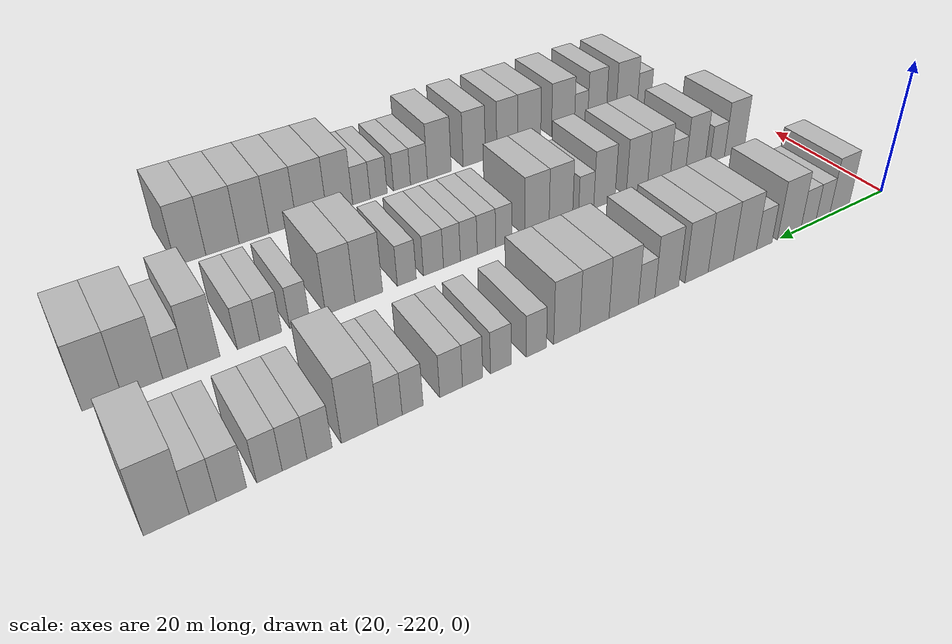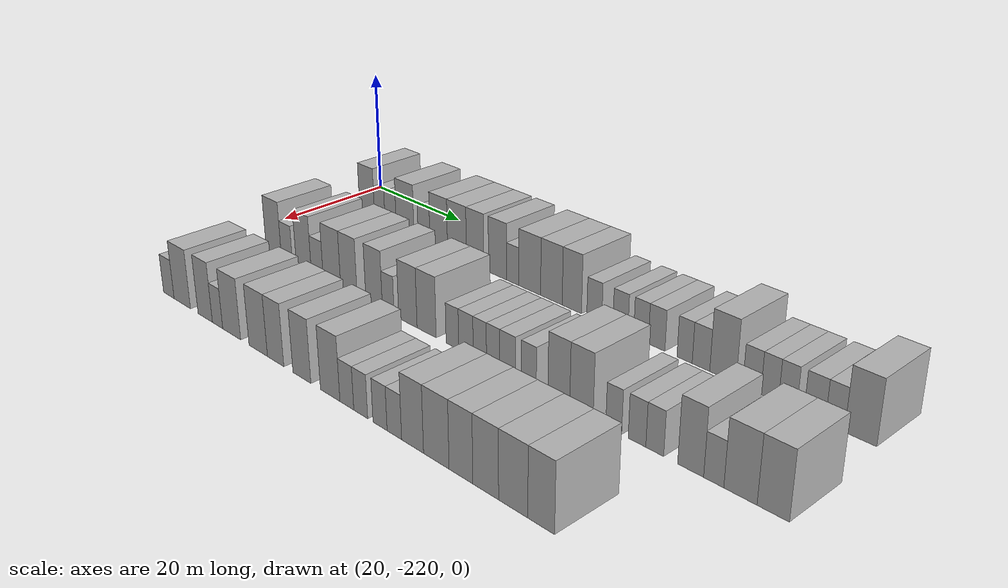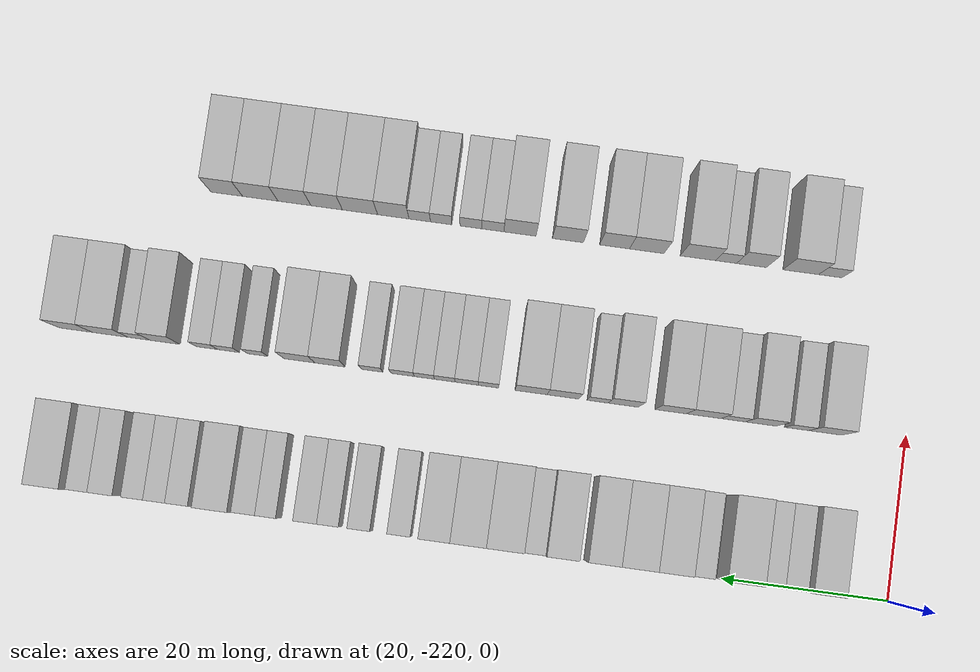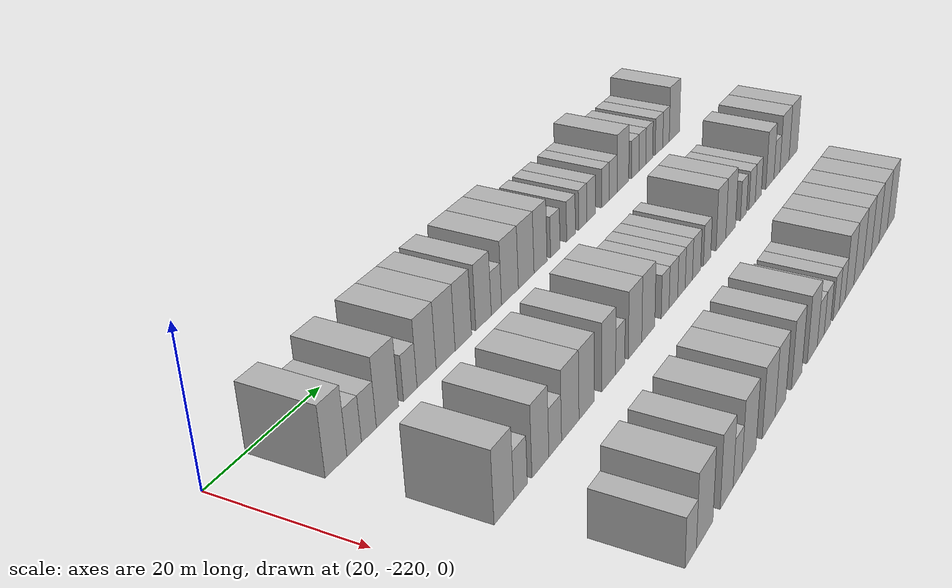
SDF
<sdf version="1.6">
 <world name="default">
  <model name="building_32">
   <static>1</static>
   <pose>25.0000 -211.2157 0 0.000000 0.000000 0.000000</pose>
   <link name="link">
    <pose>0 0 4.50 0 0 0</pose>
    <collision name="collision"><geometry><box><size>10.0000 3.8600 9.0000</size></box></geometry></collision>
    <visual name="visual">
     <cast_shadows>0</cast_shadows>
     <geometry><box><size>10.0000 3.8600 9.0000</size></box></geometry>
     <material>
      <script>
       <uri>model://HANNAS_wall/materials/scripts</uri>
       <uri>model://HANNAS_wall/materials/textures</uri>
       <name>vrc/HANNAS_wall</name>
      </script>
     </material>
    </visual>
   </link>
  </model>
  <model name="building_33">
   <static>1</static>
   <pose>25.0000 -207.9436 0 0.000000 0.000000 0.000000</pose>
   <link name="link">
    <pose>0 0 3.00 0 0 0</pose>
    <collision name="collision"><geometry><box><size>10.0000 2.6841 6.0000</size></box></geometry></collision>
    <visual name="visual">
     <cast_shadows>0</cast_shadows>
     <geometry><box><size>10.0000 2.6841 6.0000</size></box></geometry>
     <material>
      <script>
       <uri>model://HANNAS_wall/materials/scripts</uri>
       <uri>model://HANNAS_wall/materials/textures</uri>
       <name>vrc/HANNAS_wall</name>
      </script>
     </material>
    </visual>
   </link>
  </model>
  <model name="building_34">
   <static>1</static>
   <pose>25.0000 -205.1876 0 0.000000 0.000000 0.000000</pose>
   <link name="link">
    <pose>0 0 3.00 0 0 0</pose>
    <collision name="collision"><geometry><box><size>10.0000 2.8280 6.0000</size></box></geometry></collision>
    <visual name="visual">
     <cast_shadows>0</cast_shadows>
     <geometry><box><size>10.0000 2.8280 6.0000</size></box></geometry>
     <material>
      <script>
       <uri>model://HANNAS_wall/materials/scripts</uri>
       <uri>model://HANNAS_wall/materials/textures</uri>
       <name>vrc/HANNAS_wall</name>
      </script>
     </material>
    </visual>
   </link>
  </model>
  <model name="building_35">
   <static>1</static>
   <pose>25.0000 -201.5887 0 0.000000 0.000000 0.000000</pose>
   <link name="link">
    <pose>0 0 4.50 0 0 0</pose>
    <collision name="collision"><geometry><box><size>10.0000 4.3697 9.0000</size></box></geometry></collision>
    <visual name="visual">
     <cast_shadows>0</cast_shadows>
     <geometry><box><size>10.0000 4.3697 9.0000</size></box></geometry>
     <material>
      <script>
       <uri>model://HANNAS_wall/materials/scripts</uri>
       <uri>model://HANNAS_wall/materials/textures</uri>
       <name>vrc/HANNAS_wall</name>
      </script>
     </material>
    </visual>
   </link>
  </model>
  <model name="building_36">
   <static>1</static>
   <pose>25.0000 -196.9977 0 0.000000 0.000000 0.000000</pose>
   <link name="link">
    <pose>0 0 3.00 0 0 0</pose>
    <collision name="collision"><geometry><box><size>10.0000 2.8122 6.0000</size></box></geometry></collision>
    <visual name="visual">
     <cast_shadows>0</cast_shadows>
     <geometry><box><size>10.0000 2.8122 6.0000</size></box></geometry>
     <material>
      <script>
       <uri>model://HANNAS_wall/materials/scripts</uri>
       <uri>model://HANNAS_wall/materials/textures</uri>
       <name>vrc/HANNAS_wall</name>
      </script>
     </material>
    </visual>
   </link>
  </model>
  <model name="building_37">
   <static>1</static>
   <pose>25.0000 -193.5431 0 0.000000 0.000000 0.000000</pose>
   <link name="link">
    <pose>0 0 4.50 0 0 0</pose>
    <collision name="collision"><geometry><box><size>10.0000 4.0971 9.0000</size></box></geometry></collision>
    <visual name="visual">
     <cast_shadows>0</cast_shadows>
     <geometry><box><size>10.0000 4.0971 9.0000</size></box></geometry>
     <material>
      <script>
       <uri>model://HANNAS_wall/materials/scripts</uri>
       <uri>model://HANNAS_wall/materials/textures</uri>
       <name>vrc/HANNAS_wall</name>
      </script>
     </material>
    </visual>
   </link>
  </model>
  <model name="building_38">
   <static>1</static>
   <pose>25.0000 -189.3610 0 0.000000 0.000000 0.000000</pose>
   <link name="link">
    <pose>0 0 4.50 0 0 0</pose>
    <collision name="collision"><geometry><box><size>10.0000 4.2671 9.0000</size></box></geometry></collision>
    <visual name="visual">
     <cast_shadows>0</cast_shadows>
     <geometry><box><size>10.0000 4.2671 9.0000</size></box></geometry>
     <material>
      <script>
       <uri>model://HANNAS_wall/materials/scripts</uri>
       <uri>model://HANNAS_wall/materials/textures</uri>
       <name>vrc/HANNAS_wall</name>
      </script>
     </material>
    </visual>
   </link>
  </model>
  <model name="building_39">
   <static>1</static>
   <pose>25.0000 -185.3052 0 0.000000 0.000000 0.000000</pose>
   <link name="link">
    <pose>0 0 4.50 0 0 0</pose>
    <collision name="collision"><geometry><box><size>10.0000 3.8444 9.0000</size></box></geometry></collision>
    <visual name="visual">
     <cast_shadows>0</cast_shadows>
     <geometry><box><size>10.0000 3.8444 9.0000</size></box></geometry>
     <material>
      <script>
       <uri>model://HANNAS_wall/materials/scripts</uri>
       <uri>model://HANNAS_wall/materials/textures</uri>
       <name>vrc/HANNAS_wall</name>
      </script>
     </material>
    </visual>
   </link>
  </model>
  <model name="building_40">
   <static>1</static>
   <pose>25.0000 -180.4856 0 0.000000 0.000000 0.000000</pose>
   <link name="link">
    <pose>0 0 4.50 0 0 0</pose>
    <collision name="collision"><geometry><box><size>10.0000 3.7950 9.0000</size></box></geometry></collision>
    <visual name="visual">
     <cast_shadows>0</cast_shadows>
     <geometry><box><size>10.0000 3.7950 9.0000</size></box></geometry>
     <material>
      <script>
       <uri>model://HANNAS_wall/materials/scripts</uri>
       <uri>model://HANNAS_wall/materials/textures</uri>
       <name>vrc/HANNAS_wall</name>
      </script>
     </material>
    </visual>
   </link>
  </model>
  <model name="building_41">
   <static>1</static>
   <pose>25.0000 -177.2957 0 0.000000 0.000000 0.000000</pose>
   <link name="link">
    <pose>0 0 3.00 0 0 0</pose>
    <collision name="collision"><geometry><box><size>10.0000 2.5848 6.0000</size></box></geometry></collision>
    <visual name="visual">
     <cast_shadows>0</cast_shadows>
     <geometry><box><size>10.0000 2.5848 6.0000</size></box></geometry>
     <material>
      <script>
       <uri>model://HANNAS_wall/materials/scripts</uri>
       <uri>model://HANNAS_wall/materials/textures</uri>
       <name>vrc/HANNAS_wall</name>
      </script>
     </material>
    </visual>
   </link>
  </model>
  <model name="building_42">
   <static>1</static>
   <pose>25.0000 -173.7970 0 0.000000 0.000000 0.000000</pose>
   <link name="link">
    <pose>0 0 4.50 0 0 0</pose>
    <collision name="collision"><geometry><box><size>10.0000 4.4127 9.0000</size></box></geometry></collision>
    <visual name="visual">
     <cast_shadows>0</cast_shadows>
     <geometry><box><size>10.0000 4.4127 9.0000</size></box></geometry>
     <material>
      <script>
       <uri>model://HANNAS_wall/materials/scripts</uri>
       <uri>model://HANNAS_wall/materials/textures</uri>
       <name>vrc/HANNAS_wall</name>
      </script>
     </material>
    </visual>
   </link>
  </model>
  <model name="building_43">
   <static>1</static>
   <pose>25.0000 -169.4699 0 0.000000 0.000000 0.000000</pose>
   <link name="link">
    <pose>0 0 4.50 0 0 0</pose>
    <collision name="collision"><geometry><box><size>10.0000 4.2415 9.0000</size></box></geometry></collision>
    <visual name="visual">
     <cast_shadows>0</cast_shadows>
     <geometry><box><size>10.0000 4.2415 9.0000</size></box></geometry>
     <material>
      <script>
       <uri>model://HANNAS_wall/materials/scripts</uri>
       <uri>model://HANNAS_wall/materials/textures</uri>
       <name>vrc/HANNAS_wall</name>
      </script>
     </material>
    </visual>
   </link>
  </model>
  <model name="building_44">
   <static>1</static>
   <pose>25.0000 -165.5092 0 0.000000 0.000000 0.000000</pose>
   <link name="link">
    <pose>0 0 4.50 0 0 0</pose>
    <collision name="collision"><geometry><box><size>10.0000 3.6798 9.0000</size></box></geometry></collision>
    <visual name="visual">
     <cast_shadows>0</cast_shadows>
     <geometry><box><size>10.0000 3.6798 9.0000</size></box></geometry>
     <material>
      <script>
       <uri>model://HANNAS_wall/materials/scripts</uri>
       <uri>model://HANNAS_wall/materials/textures</uri>
       <name>vrc/HANNAS_wall</name>
      </script>
     </material>
    </visual>
   </link>
  </model>
  <model name="building_45">
   <static>1</static>
   <pose>25.0000 -161.2880 0 0.000000 0.000000 0.000000</pose>
   <link name="link">
    <pose>0 0 3.00 0 0 0</pose>
    <collision name="collision"><geometry><box><size>10.0000 2.7625 6.0000</size></box></geometry></collision>
    <visual name="visual">
     <cast_shadows>0</cast_shadows>
     <geometry><box><size>10.0000 2.7625 6.0000</size></box></geometry>
     <material>
      <script>
       <uri>model://HANNAS_wall/materials/scripts</uri>
       <uri>model://HANNAS_wall/materials/textures</uri>
       <name>vrc/HANNAS_wall</name>
      </script>
     </material>
    </visual>
   </link>
  </model>
  <model name="building_46">
   <static>1</static>
   <pose>25.0000 -156.5681 0 0.000000 0.000000 0.000000</pose>
   <link name="link">
    <pose>0 0 3.00 0 0 0</pose>
    <collision name="collision"><geometry><box><size>10.0000 2.6774 6.0000</size></box></geometry></collision>
    <visual name="visual">
     <cast_shadows>0</cast_shadows>
     <geometry><box><size>10.0000 2.6774 6.0000</size></box></geometry>
     <material>
      <script>
       <uri>model://HANNAS_wall/materials/scripts</uri>
       <uri>model://HANNAS_wall/materials/textures</uri>
       <name>vrc/HANNAS_wall</name>
      </script>
     </material>
    </visual>
   </link>
  </model>
  <model name="building_47">
   <static>1</static>
   <pose>25.0000 -152.9494 0 0.000000 0.000000 0.000000</pose>
   <link name="link">
    <pose>0 0 3.00 0 0 0</pose>
    <collision name="collision"><geometry><box><size>10.0000 2.5599 6.0000</size></box></geometry></collision>
    <visual name="visual">
     <cast_shadows>0</cast_shadows>
     <geometry><box><size>10.0000 2.5599 6.0000</size></box></geometry>
     <material>
      <script>
       <uri>model://HANNAS_wall/materials/scripts</uri>
       <uri>model://HANNAS_wall/materials/textures</uri>
       <name>vrc/HANNAS_wall</name>
      </script>
     </material>
    </visual>
   </link>
  </model>
  <model name="building_48">
   <static>1</static>
   <pose>25.0000 -150.2662 0 0.000000 0.000000 0.000000</pose>
   <link name="link">
    <pose>0 0 3.00 0 0 0</pose>
    <collision name="collision"><geometry><box><size>10.0000 2.8065 6.0000</size></box></geometry></collision>
    <visual name="visual">
     <cast_shadows>0</cast_shadows>
     <geometry><box><size>10.0000 2.8065 6.0000</size></box></geometry>
     <material>
      <script>
       <uri>model://HANNAS_wall/materials/scripts</uri>
       <uri>model://HANNAS_wall/materials/textures</uri>
       <name>vrc/HANNAS_wall</name>
      </script>
     </material>
    </visual>
   </link>
  </model>
  <model name="building_49">
   <static>1</static>
   <pose>25.0000 -145.6243 0 0.000000 0.000000 0.000000</pose>
   <link name="link">
    <pose>0 0 3.00 0 0 0</pose>
    <collision name="collision"><geometry><box><size>10.0000 2.4772 6.0000</size></box></geometry></collision>
    <visual name="visual">
     <cast_shadows>0</cast_shadows>
     <geometry><box><size>10.0000 2.4772 6.0000</size></box></geometry>
     <material>
      <script>
       <uri>model://HANNAS_wall/materials/scripts</uri>
       <uri>model://HANNAS_wall/materials/textures</uri>
       <name>vrc/HANNAS_wall</name>
      </script>
     </material>
    </visual>
   </link>
  </model>
  <model name="building_50">
   <static>1</static>
   <pose>25.0000 -142.9852 0 0.000000 0.000000 0.000000</pose>
   <link name="link">
    <pose>0 0 3.00 0 0 0</pose>
    <collision name="collision"><geometry><box><size>10.0000 2.8010 6.0000</size></box></geometry></collision>
    <visual name="visual">
     <cast_shadows>0</cast_shadows>
     <geometry><box><size>10.0000 2.8010 6.0000</size></box></geometry>
     <material>
      <script>
       <uri>model://HANNAS_wall/materials/scripts</uri>
       <uri>model://HANNAS_wall/materials/textures</uri>
       <name>vrc/HANNAS_wall</name>
      </script>
     </material>
    </visual>
   </link>
  </model>
  <model name="building_51">
   <static>1</static>
   <pose>25.0000 -139.5423 0 0.000000 0.000000 0.000000</pose>
   <link name="link">
    <pose>0 0 4.50 0 0 0</pose>
    <collision name="collision"><geometry><box><size>10.0000 4.0848 9.0000</size></box></geometry></collision>
    <visual name="visual">
     <cast_shadows>0</cast_shadows>
     <geometry><box><size>10.0000 4.0848 9.0000</size></box></geometry>
     <material>
      <script>
       <uri>model://HANNAS_wall/materials/scripts</uri>
       <uri>model://HANNAS_wall/materials/textures</uri>
       <name>vrc/HANNAS_wall</name>
      </script>
     </material>
    </visual>
   </link>
  </model>
  <model name="building_52">
   <static>1</static>
   <pose>25.0000 -135.1496 0 0.000000 0.000000 0.000000</pose>
   <link name="link">
    <pose>0 0 3.00 0 0 0</pose>
    <collision name="collision"><geometry><box><size>10.0000 2.7006 6.0000</size></box></geometry></collision>
    <visual name="visual">
     <cast_shadows>0</cast_shadows>
     <geometry><box><size>10.0000 2.7006 6.0000</size></box></geometry>
     <material>
      <script>
       <uri>model://HANNAS_wall/materials/scripts</uri>
       <uri>model://HANNAS_wall/materials/textures</uri>
       <name>vrc/HANNAS_wall</name>
      </script>
     </material>
    </visual>
   </link>
  </model>
  <model name="building_53">
   <static>1</static>
   <pose>25.0000 -132.5088 0 0.000000 0.000000 0.000000</pose>
   <link name="link">
    <pose>0 0 3.00 0 0 0</pose>
    <collision name="collision"><geometry><box><size>10.0000 2.5809 6.0000</size></box></geometry></collision>
    <visual name="visual">
     <cast_shadows>0</cast_shadows>
     <geometry><box><size>10.0000 2.5809 6.0000</size></box></geometry>
     <material>
      <script>
       <uri>model://HANNAS_wall/materials/scripts</uri>
       <uri>model://HANNAS_wall/materials/textures</uri>
       <name>vrc/HANNAS_wall</name>
      </script>
     </material>
    </visual>
   </link>
  </model>
  <model name="building_54">
   <static>1</static>
   <pose>25.0000 -129.9151 0 0.000000 0.000000 0.000000</pose>
   <link name="link">
    <pose>0 0 3.00 0 0 0</pose>
    <collision name="collision"><geometry><box><size>10.0000 2.6067 6.0000</size></box></geometry></collision>
    <visual name="visual">
     <cast_shadows>0</cast_shadows>
     <geometry><box><size>10.0000 2.6067 6.0000</size></box></geometry>
     <material>
      <script>
       <uri>model://HANNAS_wall/materials/scripts</uri>
       <uri>model://HANNAS_wall/materials/textures</uri>
       <name>vrc/HANNAS_wall</name>
      </script>
     </material>
    </visual>
   </link>
  </model>
  <model name="building_55">
   <static>1</static>
   <pose>25.0000 -126.1321 0 0.000000 0.000000 0.000000</pose>
   <link name="link">
    <pose>0 0 3.00 0 0 0</pose>
    <collision name="collision"><geometry><box><size>10.0000 2.9593 6.0000</size></box></geometry></collision>
    <visual name="visual">
     <cast_shadows>0</cast_shadows>
     <geometry><box><size>10.0000 2.9593 6.0000</size></box></geometry>
     <material>
      <script>
       <uri>model://HANNAS_wall/materials/scripts</uri>
       <uri>model://HANNAS_wall/materials/textures</uri>
       <name>vrc/HANNAS_wall</name>
      </script>
     </material>
    </visual>
   </link>
  </model>
  <model name="building_56">
   <static>1</static>
   <pose>25.0000 -123.3540 0 0.000000 0.000000 0.000000</pose>
   <link name="link">
    <pose>0 0 3.00 0 0 0</pose>
    <collision name="collision"><geometry><box><size>10.0000 2.5968 6.0000</size></box></geometry></collision>
    <visual name="visual">
     <cast_shadows>0</cast_shadows>
     <geometry><box><size>10.0000 2.5968 6.0000</size></box></geometry>
     <material>
      <script>
       <uri>model://HANNAS_wall/materials/scripts</uri>
       <uri>model://HANNAS_wall/materials/textures</uri>
       <name>vrc/HANNAS_wall</name>
      </script>
     </material>
    </visual>
   </link>
  </model>
  <model name="building_57">
   <static>1</static>
   <pose>25.0000 -119.9415 0 0.000000 0.000000 0.000000</pose>
   <link name="link">
    <pose>0 0 4.50 0 0 0</pose>
    <collision name="collision"><geometry><box><size>10.0000 4.2282 9.0000</size></box></geometry></collision>
    <visual name="visual">
     <cast_shadows>0</cast_shadows>
     <geometry><box><size>10.0000 4.2282 9.0000</size></box></geometry>
     <material>
      <script>
       <uri>model://HANNAS_wall/materials/scripts</uri>
       <uri>model://HANNAS_wall/materials/textures</uri>
       <name>vrc/HANNAS_wall</name>
      </script>
     </material>
    </visual>
   </link>
  </model>
  <model name="building_204">
   <static>1</static>
   <pose>44.0000 -210.2136 0 0.000000 0.000000 0.000000</pose>
   <link name="link">
    <pose>0 0 4.50 0 0 0</pose>
    <collision name="collision"><geometry><box><size>10.0000 4.0123 9.0000</size></box></geometry></collision>
    <visual name="visual">
     <cast_shadows>0</cast_shadows>
     <geometry><box><size>10.0000 4.0123 9.0000</size></box></geometry>
     <material>
      <script>
       <uri>model://HANNAS_wall/materials/scripts</uri>
       <uri>model://HANNAS_wall/materials/textures</uri>
       <name>vrc/HANNAS_wall</name>
      </script>
     </material>
    </visual>
   </link>
  </model>
  <model name="building_205">
   <static>1</static>
   <pose>44.0000 -206.7617 0 0.000000 0.000000 0.000000</pose>
   <link name="link">
    <pose>0 0 3.00 0 0 0</pose>
    <collision name="collision"><geometry><box><size>10.0000 2.8915 6.0000</size></box></geometry></collision>
    <visual name="visual">
     <cast_shadows>0</cast_shadows>
     <geometry><box><size>10.0000 2.8915 6.0000</size></box></geometry>
     <material>
      <script>
       <uri>model://HANNAS_wall/materials/scripts</uri>
       <uri>model://HANNAS_wall/materials/textures</uri>
       <name>vrc/HANNAS_wall</name>
      </script>
     </material>
    </visual>
   </link>
  </model>
  <model name="building_206">
   <static>1</static>
   <pose>44.0000 -202.4226 0 0.000000 0.000000 0.000000</pose>
   <link name="link">
    <pose>0 0 4.50 0 0 0</pose>
    <collision name="collision"><geometry><box><size>10.0000 3.7867 9.0000</size></box></geometry></collision>
    <visual name="visual">
     <cast_shadows>0</cast_shadows>
     <geometry><box><size>10.0000 3.7867 9.0000</size></box></geometry>
     <material>
      <script>
       <uri>model://HANNAS_wall/materials/scripts</uri>
       <uri>model://HANNAS_wall/materials/textures</uri>
       <name>vrc/HANNAS_wall</name>
      </script>
     </material>
    </visual>
   </link>
  </model>
  <model name="building_207">
   <static>1</static>
   <pose>44.0000 -199.0599 0 0.000000 0.000000 0.000000</pose>
   <link name="link">
    <pose>0 0 3.00 0 0 0</pose>
    <collision name="collision"><geometry><box><size>10.0000 2.9387 6.0000</size></box></geometry></collision>
    <visual name="visual">
     <cast_shadows>0</cast_shadows>
     <geometry><box><size>10.0000 2.9387 6.0000</size></box></geometry>
     <material>
      <script>
       <uri>model://HANNAS_wall/materials/scripts</uri>
       <uri>model://HANNAS_wall/materials/textures</uri>
       <name>vrc/HANNAS_wall</name>
      </script>
     </material>
    </visual>
   </link>
  </model>
  <model name="building_208">
   <static>1</static>
   <pose>44.0000 -195.4843 0 0.000000 0.000000 0.000000</pose>
   <link name="link">
    <pose>0 0 4.50 0 0 0</pose>
    <collision name="collision"><geometry><box><size>10.0000 4.2125 9.0000</size></box></geometry></collision>
    <visual name="visual">
     <cast_shadows>0</cast_shadows>
     <geometry><box><size>10.0000 4.2125 9.0000</size></box></geometry>
     <material>
      <script>
       <uri>model://HANNAS_wall/materials/scripts</uri>
       <uri>model://HANNAS_wall/materials/textures</uri>
       <name>vrc/HANNAS_wall</name>
      </script>
     </material>
    </visual>
   </link>
  </model>
  <model name="building_209">
   <static>1</static>
   <pose>44.0000 -191.4628 0 0.000000 0.000000 0.000000</pose>
   <link name="link">
    <pose>0 0 4.50 0 0 0</pose>
    <collision name="collision"><geometry><box><size>10.0000 3.8307 9.0000</size></box></geometry></collision>
    <visual name="visual">
     <cast_shadows>0</cast_shadows>
     <geometry><box><size>10.0000 3.8307 9.0000</size></box></geometry>
     <material>
      <script>
       <uri>model://HANNAS_wall/materials/scripts</uri>
       <uri>model://HANNAS_wall/materials/textures</uri>
       <name>vrc/HANNAS_wall</name>
      </script>
     </material>
    </visual>
   </link>
  </model>
  <model name="building_210">
   <static>1</static>
   <pose>44.0000 -185.7054 0 0.000000 0.000000 0.000000</pose>
   <link name="link">
    <pose>0 0 4.50 0 0 0</pose>
    <collision name="collision"><geometry><box><size>10.0000 3.6840 9.0000</size></box></geometry></collision>
    <visual name="visual">
     <cast_shadows>0</cast_shadows>
     <geometry><box><size>10.0000 3.6840 9.0000</size></box></geometry>
     <material>
      <script>
       <uri>model://HANNAS_wall/materials/scripts</uri>
       <uri>model://HANNAS_wall/materials/textures</uri>
       <name>vrc/HANNAS_wall</name>
      </script>
     </material>
    </visual>
   </link>
  </model>
  <model name="building_211">
   <static>1</static>
   <pose>44.0000 -182.5838 0 0.000000 0.000000 0.000000</pose>
   <link name="link">
    <pose>0 0 3.00 0 0 0</pose>
    <collision name="collision"><geometry><box><size>10.0000 2.5592 6.0000</size></box></geometry></collision>
    <visual name="visual">
     <cast_shadows>0</cast_shadows>
     <geometry><box><size>10.0000 2.5592 6.0000</size></box></geometry>
     <material>
      <script>
       <uri>model://HANNAS_wall/materials/scripts</uri>
       <uri>model://HANNAS_wall/materials/textures</uri>
       <name>vrc/HANNAS_wall</name>
      </script>
     </material>
    </visual>
   </link>
  </model>
  <model name="building_212">
   <static>1</static>
   <pose>44.0000 -178.3676 0 0.000000 0.000000 0.000000</pose>
   <link name="link">
    <pose>0 0 4.50 0 0 0</pose>
    <collision name="collision"><geometry><box><size>10.0000 3.8733 9.0000</size></box></geometry></collision>
    <visual name="visual">
     <cast_shadows>0</cast_shadows>
     <geometry><box><size>10.0000 3.8733 9.0000</size></box></geometry>
     <material>
      <script>
       <uri>model://HANNAS_wall/materials/scripts</uri>
       <uri>model://HANNAS_wall/materials/textures</uri>
       <name>vrc/HANNAS_wall</name>
      </script>
     </material>
    </visual>
   </link>
  </model>
  <model name="building_213">
   <static>1</static>
   <pose>44.0000 -174.4769 0 0.000000 0.000000 0.000000</pose>
   <link name="link">
    <pose>0 0 4.50 0 0 0</pose>
    <collision name="collision"><geometry><box><size>10.0000 3.9080 9.0000</size></box></geometry></collision>
    <visual name="visual">
     <cast_shadows>0</cast_shadows>
     <geometry><box><size>10.0000 3.9080 9.0000</size></box></geometry>
     <material>
      <script>
       <uri>model://HANNAS_wall/materials/scripts</uri>
       <uri>model://HANNAS_wall/materials/textures</uri>
       <name>vrc/HANNAS_wall</name>
      </script>
     </material>
    </visual>
   </link>
  </model>
  <model name="building_214">
   <static>1</static>
   <pose>44.0000 -169.2808 0 0.000000 0.000000 0.000000</pose>
   <link name="link">
    <pose>0 0 3.00 0 0 0</pose>
    <collision name="collision"><geometry><box><size>10.0000 2.4842 6.0000</size></box></geometry></collision>
    <visual name="visual">
     <cast_shadows>0</cast_shadows>
     <geometry><box><size>10.0000 2.4842 6.0000</size></box></geometry>
     <material>
      <script>
       <uri>model://HANNAS_wall/materials/scripts</uri>
       <uri>model://HANNAS_wall/materials/textures</uri>
       <name>vrc/HANNAS_wall</name>
      </script>
     </material>
    </visual>
   </link>
  </model>
  <model name="building_215">
   <static>1</static>
   <pose>44.0000 -166.6425 0 0.000000 0.000000 0.000000</pose>
   <link name="link">
    <pose>0 0 3.00 0 0 0</pose>
    <collision name="collision"><geometry><box><size>10.0000 2.7923 6.0000</size></box></geometry></collision>
    <visual name="visual">
     <cast_shadows>0</cast_shadows>
     <geometry><box><size>10.0000 2.7923 6.0000</size></box></geometry>
     <material>
      <script>
       <uri>model://HANNAS_wall/materials/scripts</uri>
       <uri>model://HANNAS_wall/materials/textures</uri>
       <name>vrc/HANNAS_wall</name>
      </script>
     </material>
    </visual>
   </link>
  </model>
  <model name="building_216">
   <static>1</static>
   <pose>44.0000 -163.9953 0 0.000000 0.000000 0.000000</pose>
   <link name="link">
    <pose>0 0 3.00 0 0 0</pose>
    <collision name="collision"><geometry><box><size>10.0000 2.5022 6.0000</size></box></geometry></collision>
    <visual name="visual">
     <cast_shadows>0</cast_shadows>
     <geometry><box><size>10.0000 2.5022 6.0000</size></box></geometry>
     <material>
      <script>
       <uri>model://HANNAS_wall/materials/scripts</uri>
       <uri>model://HANNAS_wall/materials/textures</uri>
       <name>vrc/HANNAS_wall</name>
      </script>
     </material>
    </visual>
   </link>
  </model>
  <model name="building_217">
   <static>1</static>
   <pose>44.0000 -161.5154 0 0.000000 0.000000 0.000000</pose>
   <link name="link">
    <pose>0 0 3.00 0 0 0</pose>
    <collision name="collision"><geometry><box><size>10.0000 2.4577 6.0000</size></box></geometry></collision>
    <visual name="visual">
     <cast_shadows>0</cast_shadows>
     <geometry><box><size>10.0000 2.4577 6.0000</size></box></geometry>
     <material>
      <script>
       <uri>model://HANNAS_wall/materials/scripts</uri>
       <uri>model://HANNAS_wall/materials/textures</uri>
       <name>vrc/HANNAS_wall</name>
      </script>
     </material>
    </visual>
   </link>
  </model>
  <model name="building_218">
   <static>1</static>
   <pose>44.0000 -158.8565 0 0.000000 0.000000 0.000000</pose>
   <link name="link">
    <pose>0 0 3.00 0 0 0</pose>
    <collision name="collision"><geometry><box><size>10.0000 2.8601 6.0000</size></box></geometry></collision>
    <visual name="visual">
     <cast_shadows>0</cast_shadows>
     <geometry><box><size>10.0000 2.8601 6.0000</size></box></geometry>
     <material>
      <script>
       <uri>model://HANNAS_wall/materials/scripts</uri>
       <uri>model://HANNAS_wall/materials/textures</uri>
       <name>vrc/HANNAS_wall</name>
      </script>
     </material>
    </visual>
   </link>
  </model>
  <model name="building_219">
   <static>1</static>
   <pose>44.0000 -155.1144 0 0.000000 0.000000 0.000000</pose>
   <link name="link">
    <pose>0 0 3.00 0 0 0</pose>
    <collision name="collision"><geometry><box><size>10.0000 2.6239 6.0000</size></box></geometry></collision>
    <visual name="visual">
     <cast_shadows>0</cast_shadows>
     <geometry><box><size>10.0000 2.6239 6.0000</size></box></geometry>
     <material>
      <script>
       <uri>model://HANNAS_wall/materials/scripts</uri>
       <uri>model://HANNAS_wall/materials/textures</uri>
       <name>vrc/HANNAS_wall</name>
      </script>
     </material>
    </visual>
   </link>
  </model>
  <model name="building_220">
   <static>1</static>
   <pose>44.0000 -149.9736 0 0.000000 0.000000 0.000000</pose>
   <link name="link">
    <pose>0 0 4.50 0 0 0</pose>
    <collision name="collision"><geometry><box><size>10.0000 3.6578 9.0000</size></box></geometry></collision>
    <visual name="visual">
     <cast_shadows>0</cast_shadows>
     <geometry><box><size>10.0000 3.6578 9.0000</size></box></geometry>
     <material>
      <script>
       <uri>model://HANNAS_wall/materials/scripts</uri>
       <uri>model://HANNAS_wall/materials/textures</uri>
       <name>vrc/HANNAS_wall</name>
      </script>
     </material>
    </visual>
   </link>
  </model>
  <model name="building_221">
   <static>1</static>
   <pose>44.0000 -146.2440 0 0.000000 0.000000 0.000000</pose>
   <link name="link">
    <pose>0 0 4.50 0 0 0</pose>
    <collision name="collision"><geometry><box><size>10.0000 3.8013 9.0000</size></box></geometry></collision>
    <visual name="visual">
     <cast_shadows>0</cast_shadows>
     <geometry><box><size>10.0000 3.8013 9.0000</size></box></geometry>
     <material>
      <script>
       <uri>model://HANNAS_wall/materials/scripts</uri>
       <uri>model://HANNAS_wall/materials/textures</uri>
       <name>vrc/HANNAS_wall</name>
      </script>
     </material>
    </visual>
   </link>
  </model>
  <model name="building_222">
   <static>1</static>
   <pose>44.0000 -141.1121 0 0.000000 0.000000 0.000000</pose>
   <link name="link">
    <pose>0 0 3.00 0 0 0</pose>
    <collision name="collision"><geometry><box><size>10.0000 2.4626 6.0000</size></box></geometry></collision>
    <visual name="visual">
     <cast_shadows>0</cast_shadows>
     <geometry><box><size>10.0000 2.4626 6.0000</size></box></geometry>
     <material>
      <script>
       <uri>model://HANNAS_wall/materials/scripts</uri>
       <uri>model://HANNAS_wall/materials/textures</uri>
       <name>vrc/HANNAS_wall</name>
      </script>
     </material>
    </visual>
   </link>
  </model>
  <model name="building_223">
   <static>1</static>
   <pose>44.0000 -137.5568 0 0.000000 0.000000 0.000000</pose>
   <link name="link">
    <pose>0 0 3.00 0 0 0</pose>
    <collision name="collision"><geometry><box><size>10.0000 2.6478 6.0000</size></box></geometry></collision>
    <visual name="visual">
     <cast_shadows>0</cast_shadows>
     <geometry><box><size>10.0000 2.6478 6.0000</size></box></geometry>
     <material>
      <script>
       <uri>model://HANNAS_wall/materials/scripts</uri>
       <uri>model://HANNAS_wall/materials/textures</uri>
       <name>vrc/HANNAS_wall</name>
      </script>
     </material>
    </visual>
   </link>
  </model>
  <model name="building_224">
   <static>1</static>
   <pose>44.0000 -134.9230 0 0.000000 0.000000 0.000000</pose>
   <link name="link">
    <pose>0 0 3.00 0 0 0</pose>
    <collision name="collision"><geometry><box><size>10.0000 2.6198 6.0000</size></box></geometry></collision>
    <visual name="visual">
     <cast_shadows>0</cast_shadows>
     <geometry><box><size>10.0000 2.6198 6.0000</size></box></geometry>
     <material>
      <script>
       <uri>model://HANNAS_wall/materials/scripts</uri>
       <uri>model://HANNAS_wall/materials/textures</uri>
       <name>vrc/HANNAS_wall</name>
      </script>
     </material>
    </visual>
   </link>
  </model>
  <model name="building_225">
   <static>1</static>
   <pose>44.0000 -129.7990 0 0.000000 0.000000 0.000000</pose>
   <link name="link">
    <pose>0 0 4.50 0 0 0</pose>
    <collision name="collision"><geometry><box><size>10.0000 3.6281 9.0000</size></box></geometry></collision>
    <visual name="visual">
     <cast_shadows>0</cast_shadows>
     <geometry><box><size>10.0000 3.6281 9.0000</size></box></geometry>
     <material>
      <script>
       <uri>model://HANNAS_wall/materials/scripts</uri>
       <uri>model://HANNAS_wall/materials/textures</uri>
       <name>vrc/HANNAS_wall</name>
      </script>
     </material>
    </visual>
   </link>
  </model>
  <model name="building_226">
   <static>1</static>
   <pose>44.0000 -126.6204 0 0.000000 0.000000 0.000000</pose>
   <link name="link">
    <pose>0 0 3.00 0 0 0</pose>
    <collision name="collision"><geometry><box><size>10.0000 2.7292 6.0000</size></box></geometry></collision>
    <visual name="visual">
     <cast_shadows>0</cast_shadows>
     <geometry><box><size>10.0000 2.7292 6.0000</size></box></geometry>
     <material>
      <script>
       <uri>model://HANNAS_wall/materials/scripts</uri>
       <uri>model://HANNAS_wall/materials/textures</uri>
       <name>vrc/HANNAS_wall</name>
      </script>
     </material>
    </visual>
   </link>
  </model>
  <model name="building_227">
   <static>1</static>
   <pose>44.0000 -123.0811 0 0.000000 0.000000 0.000000</pose>
   <link name="link">
    <pose>0 0 4.50 0 0 0</pose>
    <collision name="collision"><geometry><box><size>10.0000 4.3493 9.0000</size></box></geometry></collision>
    <visual name="visual">
     <cast_shadows>0</cast_shadows>
     <geometry><box><size>10.0000 4.3493 9.0000</size></box></geometry>
     <material>
      <script>
       <uri>model://HANNAS_wall/materials/scripts</uri>
       <uri>model://HANNAS_wall/materials/textures</uri>
       <name>vrc/HANNAS_wall</name>
      </script>
     </material>
    </visual>
   </link>
  </model>
  <model name="building_228">
   <static>1</static>
   <pose>44.0000 -118.8683 0 0.000000 0.000000 0.000000</pose>
   <link name="link">
    <pose>0 0 4.50 0 0 0</pose>
    <collision name="collision"><geometry><box><size>10.0000 4.0764 9.0000</size></box></geometry></collision>
    <visual name="visual">
     <cast_shadows>0</cast_shadows>
     <geometry><box><size>10.0000 4.0764 9.0000</size></box></geometry>
     <material>
      <script>
       <uri>model://HANNAS_wall/materials/scripts</uri>
       <uri>model://HANNAS_wall/materials/textures</uri>
       <name>vrc/HANNAS_wall</name>
      </script>
     </material>
    </visual>
   </link>
  </model>
  <model name="building_381">
   <static>1</static>
   <pose>63.0000 -208.6643 0 0.000000 0.000000 0.000000</pose>
   <link name="link">
    <pose>0 0 3.00 0 0 0</pose>
    <collision name="collision"><geometry><box><size>10.0000 2.8818 6.0000</size></box></geometry></collision>
    <visual name="visual">
     <cast_shadows>0</cast_shadows>
     <geometry><box><size>10.0000 2.8818 6.0000</size></box></geometry>
     <material>
      <script>
       <uri>model://HANNAS_wall/materials/scripts</uri>
       <uri>model://HANNAS_wall/materials/textures</uri>
       <name>vrc/HANNAS_wall</name>
      </script>
     </material>
    </visual>
   </link>
  </model>
  <model name="building_382">
   <static>1</static>
   <pose>63.0000 -205.0381 0 0.000000 0.000000 0.000000</pose>
   <link name="link">
    <pose>0 0 4.50 0 0 0</pose>
    <collision name="collision"><geometry><box><size>10.0000 4.3706 9.0000</size></box></geometry></collision>
    <visual name="visual">
     <cast_shadows>0</cast_shadows>
     <geometry><box><size>10.0000 4.3706 9.0000</size></box></geometry>
     <material>
      <script>
       <uri>model://HANNAS_wall/materials/scripts</uri>
       <uri>model://HANNAS_wall/materials/textures</uri>
       <name>vrc/HANNAS_wall</name>
      </script>
     </material>
    </visual>
   </link>
  </model>
  <model name="building_383">
   <static>1</static>
   <pose>63.0000 -199.0265 0 0.000000 0.000000 0.000000</pose>
   <link name="link">
    <pose>0 0 4.50 0 0 0</pose>
    <collision name="collision"><geometry><box><size>10.0000 3.6526 9.0000</size></box></geometry></collision>
    <visual name="visual">
     <cast_shadows>0</cast_shadows>
     <geometry><box><size>10.0000 3.6526 9.0000</size></box></geometry>
     <material>
      <script>
       <uri>model://HANNAS_wall/materials/scripts</uri>
       <uri>model://HANNAS_wall/materials/textures</uri>
       <name>vrc/HANNAS_wall</name>
      </script>
     </material>
    </visual>
   </link>
  </model>
  <model name="building_384">
   <static>1</static>
   <pose>63.0000 -195.9118 0 0.000000 0.000000 0.000000</pose>
   <link name="link">
    <pose>0 0 3.00 0 0 0</pose>
    <collision name="collision"><geometry><box><size>10.0000 2.5768 6.0000</size></box></geometry></collision>
    <visual name="visual">
     <cast_shadows>0</cast_shadows>
     <geometry><box><size>10.0000 2.5768 6.0000</size></box></geometry>
     <material>
      <script>
       <uri>model://HANNAS_wall/materials/scripts</uri>
       <uri>model://HANNAS_wall/materials/textures</uri>
       <name>vrc/HANNAS_wall</name>
      </script>
     </material>
    </visual>
   </link>
  </model>
  <model name="building_385">
   <static>1</static>
   <pose>63.0000 -192.4491 0 0.000000 0.000000 0.000000</pose>
   <link name="link">
    <pose>0 0 4.50 0 0 0</pose>
    <collision name="collision"><geometry><box><size>10.0000 4.3485 9.0000</size></box></geometry></collision>
    <visual name="visual">
     <cast_shadows>0</cast_shadows>
     <geometry><box><size>10.0000 4.3485 9.0000</size></box></geometry>
     <material>
      <script>
       <uri>model://HANNAS_wall/materials/scripts</uri>
       <uri>model://HANNAS_wall/materials/textures</uri>
       <name>vrc/HANNAS_wall</name>
      </script>
     </material>
    </visual>
   </link>
  </model>
  <model name="building_386">
   <static>1</static>
   <pose>63.0000 -186.1527 0 0.000000 0.000000 0.000000</pose>
   <link name="link">
    <pose>0 0 4.50 0 0 0</pose>
    <collision name="collision"><geometry><box><size>10.0000 4.2444 9.0000</size></box></geometry></collision>
    <visual name="visual">
     <cast_shadows>0</cast_shadows>
     <geometry><box><size>10.0000 4.2444 9.0000</size></box></geometry>
     <material>
      <script>
       <uri>model://HANNAS_wall/materials/scripts</uri>
       <uri>model://HANNAS_wall/materials/textures</uri>
       <name>vrc/HANNAS_wall</name>
      </script>
     </material>
    </visual>
   </link>
  </model>
  <model name="building_387">
   <static>1</static>
   <pose>63.0000 -182.1996 0 0.000000 0.000000 0.000000</pose>
   <link name="link">
    <pose>0 0 4.50 0 0 0</pose>
    <collision name="collision"><geometry><box><size>10.0000 3.6617 9.0000</size></box></geometry></collision>
    <visual name="visual">
     <cast_shadows>0</cast_shadows>
     <geometry><box><size>10.0000 3.6617 9.0000</size></box></geometry>
     <material>
      <script>
       <uri>model://HANNAS_wall/materials/scripts</uri>
       <uri>model://HANNAS_wall/materials/textures</uri>
       <name>vrc/HANNAS_wall</name>
      </script>
     </material>
    </visual>
   </link>
  </model>
  <model name="building_388">
   <static>1</static>
   <pose>63.0000 -176.4600 0 0.000000 0.000000 0.000000</pose>
   <link name="link">
    <pose>0 0 4.50 0 0 0</pose>
    <collision name="collision"><geometry><box><size>10.0000 3.8174 9.0000</size></box></geometry></collision>
    <visual name="visual">
     <cast_shadows>0</cast_shadows>
     <geometry><box><size>10.0000 3.8174 9.0000</size></box></geometry>
     <material>
      <script>
       <uri>model://HANNAS_wall/materials/scripts</uri>
       <uri>model://HANNAS_wall/materials/textures</uri>
       <name>vrc/HANNAS_wall</name>
      </script>
     </material>
    </visual>
   </link>
  </model>
  <model name="building_389">
   <static>1</static>
   <pose>63.0000 -170.5796 0 0.000000 0.000000 0.000000</pose>
   <link name="link">
    <pose>0 0 4.50 0 0 0</pose>
    <collision name="collision"><geometry><box><size>10.0000 3.9434 9.0000</size></box></geometry></collision>
    <visual name="visual">
     <cast_shadows>0</cast_shadows>
     <geometry><box><size>10.0000 3.9434 9.0000</size></box></geometry>
     <material>
      <script>
       <uri>model://HANNAS_wall/materials/scripts</uri>
       <uri>model://HANNAS_wall/materials/textures</uri>
       <name>vrc/HANNAS_wall</name>
      </script>
     </material>
    </visual>
   </link>
  </model>
  <model name="building_390">
   <static>1</static>
   <pose>63.0000 -167.2414 0 0.000000 0.000000 0.000000</pose>
   <link name="link">
    <pose>0 0 3.00 0 0 0</pose>
    <collision name="collision"><geometry><box><size>10.0000 2.7330 6.0000</size></box></geometry></collision>
    <visual name="visual">
     <cast_shadows>0</cast_shadows>
     <geometry><box><size>10.0000 2.7330 6.0000</size></box></geometry>
     <material>
      <script>
       <uri>model://HANNAS_wall/materials/scripts</uri>
       <uri>model://HANNAS_wall/materials/textures</uri>
       <name>vrc/HANNAS_wall</name>
      </script>
     </material>
    </visual>
   </link>
  </model>
  <model name="building_391">
   <static>1</static>
   <pose>63.0000 -164.5336 0 0.000000 0.000000 0.000000</pose>
   <link name="link">
    <pose>0 0 3.00 0 0 0</pose>
    <collision name="collision"><geometry><box><size>10.0000 2.6827 6.0000</size></box></geometry></collision>
    <visual name="visual">
     <cast_shadows>0</cast_shadows>
     <geometry><box><size>10.0000 2.6827 6.0000</size></box></geometry>
     <material>
      <script>
       <uri>model://HANNAS_wall/materials/scripts</uri>
       <uri>model://HANNAS_wall/materials/textures</uri>
       <name>vrc/HANNAS_wall</name>
      </script>
     </material>
    </visual>
   </link>
  </model>
  <model name="building_392">
   <static>1</static>
   <pose>63.0000 -160.8797 0 0.000000 0.000000 0.000000</pose>
   <link name="link">
    <pose>0 0 3.00 0 0 0</pose>
    <collision name="collision"><geometry><box><size>10.0000 2.6249 6.0000</size></box></geometry></collision>
    <visual name="visual">
     <cast_shadows>0</cast_shadows>
     <geometry><box><size>10.0000 2.6249 6.0000</size></box></geometry>
     <material>
      <script>
       <uri>model://HANNAS_wall/materials/scripts</uri>
       <uri>model://HANNAS_wall/materials/textures</uri>
       <name>vrc/HANNAS_wall</name>
      </script>
     </material>
    </visual>
   </link>
  </model>
  <model name="building_393">
   <static>1</static>
   <pose>63.0000 -158.2428 0 0.000000 0.000000 0.000000</pose>
   <link name="link">
    <pose>0 0 3.00 0 0 0</pose>
    <collision name="collision"><geometry><box><size>10.0000 2.6490 6.0000</size></box></geometry></collision>
    <visual name="visual">
     <cast_shadows>0</cast_shadows>
     <geometry><box><size>10.0000 2.6490 6.0000</size></box></geometry>
     <material>
      <script>
       <uri>model://HANNAS_wall/materials/scripts</uri>
       <uri>model://HANNAS_wall/materials/textures</uri>
       <name>vrc/HANNAS_wall</name>
      </script>
     </material>
    </visual>
   </link>
  </model>
  <model name="building_394">
   <static>1</static>
   <pose>63.0000 -154.9851 0 0.000000 0.000000 0.000000</pose>
   <link name="link">
    <pose>0 0 4.50 0 0 0</pose>
    <collision name="collision"><geometry><box><size>10.0000 3.8664 9.0000</size></box></geometry></collision>
    <visual name="visual">
     <cast_shadows>0</cast_shadows>
     <geometry><box><size>10.0000 3.8664 9.0000</size></box></geometry>
     <material>
      <script>
       <uri>model://HANNAS_wall/materials/scripts</uri>
       <uri>model://HANNAS_wall/materials/textures</uri>
       <name>vrc/HANNAS_wall</name>
      </script>
     </material>
    </visual>
   </link>
  </model>
  <model name="building_395">
   <static>1</static>
   <pose>63.0000 -150.8809 0 0.000000 0.000000 0.000000</pose>
   <link name="link">
    <pose>0 0 4.50 0 0 0</pose>
    <collision name="collision"><geometry><box><size>10.0000 4.3420 9.0000</size></box></geometry></collision>
    <visual name="visual">
     <cast_shadows>0</cast_shadows>
     <geometry><box><size>10.0000 4.3420 9.0000</size></box></geometry>
     <material>
      <script>
       <uri>model://HANNAS_wall/materials/scripts</uri>
       <uri>model://HANNAS_wall/materials/textures</uri>
       <name>vrc/HANNAS_wall</name>
      </script>
     </material>
    </visual>
   </link>
  </model>
  <model name="building_396">
   <static>1</static>
   <pose>63.0000 -146.7696 0 0.000000 0.000000 0.000000</pose>
   <link name="link">
    <pose>0 0 4.50 0 0 0</pose>
    <collision name="collision"><geometry><box><size>10.0000 3.8806 9.0000</size></box></geometry></collision>
    <visual name="visual">
     <cast_shadows>0</cast_shadows>
     <geometry><box><size>10.0000 3.8806 9.0000</size></box></geometry>
     <material>
      <script>
       <uri>model://HANNAS_wall/materials/scripts</uri>
       <uri>model://HANNAS_wall/materials/textures</uri>
       <name>vrc/HANNAS_wall</name>
      </script>
     </material>
    </visual>
   </link>
  </model>
  <model name="building_397">
   <static>1</static>
   <pose>63.0000 -142.8059 0 0.000000 0.000000 0.000000</pose>
   <link name="link">
    <pose>0 0 4.50 0 0 0</pose>
    <collision name="collision"><geometry><box><size>10.0000 4.0466 9.0000</size></box></geometry></collision>
    <visual name="visual">
     <cast_shadows>0</cast_shadows>
     <geometry><box><size>10.0000 4.0466 9.0000</size></box></geometry>
     <material>
      <script>
       <uri>model://HANNAS_wall/materials/scripts</uri>
       <uri>model://HANNAS_wall/materials/textures</uri>
       <name>vrc/HANNAS_wall</name>
      </script>
     </material>
    </visual>
   </link>
  </model>
  <model name="building_398">
   <static>1</static>
   <pose>63.0000 -138.5847 0 0.000000 0.000000 0.000000</pose>
   <link name="link">
    <pose>0 0 4.50 0 0 0</pose>
    <collision name="collision"><geometry><box><size>10.0000 4.3960 9.0000</size></box></geometry></collision>
    <visual name="visual">
     <cast_shadows>0</cast_shadows>
     <geometry><box><size>10.0000 4.3960 9.0000</size></box></geometry>
     <material>
      <script>
       <uri>model://HANNAS_wall/materials/scripts</uri>
       <uri>model://HANNAS_wall/materials/textures</uri>
       <name>vrc/HANNAS_wall</name>
      </script>
     </material>
    </visual>
   </link>
  </model>
  <model name="building_399">
   <static>1</static>
   <pose>63.0000 -134.4409 0 0.000000 0.000000 0.000000</pose>
   <link name="link">
    <pose>0 0 4.50 0 0 0</pose>
    <collision name="collision"><geometry><box><size>10.0000 3.8915 9.0000</size></box></geometry></collision>
    <visual name="visual">
     <cast_shadows>0</cast_shadows>
     <geometry><box><size>10.0000 3.8915 9.0000</size></box></geometry>
     <material>
      <script>
       <uri>model://HANNAS_wall/materials/scripts</uri>
       <uri>model://HANNAS_wall/materials/textures</uri>
       <name>vrc/HANNAS_wall</name>
      </script>
     </material>
    </visual>
   </link>
  </model>
 </world>
</sdf>
